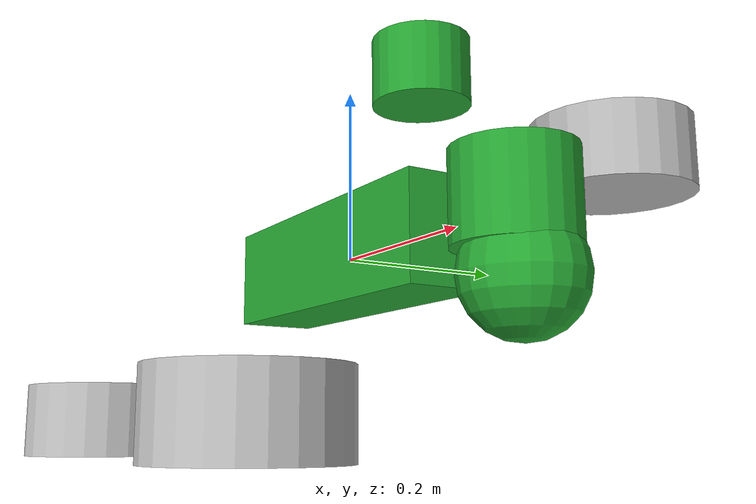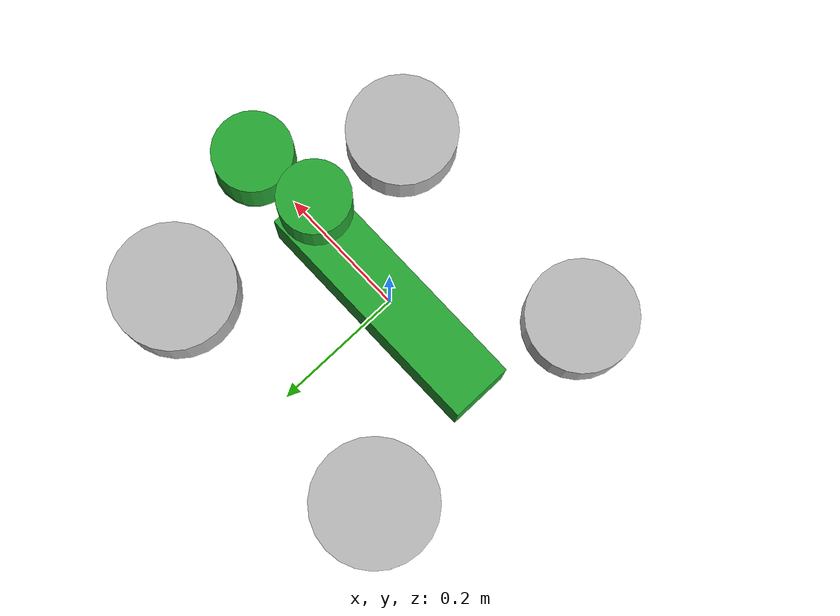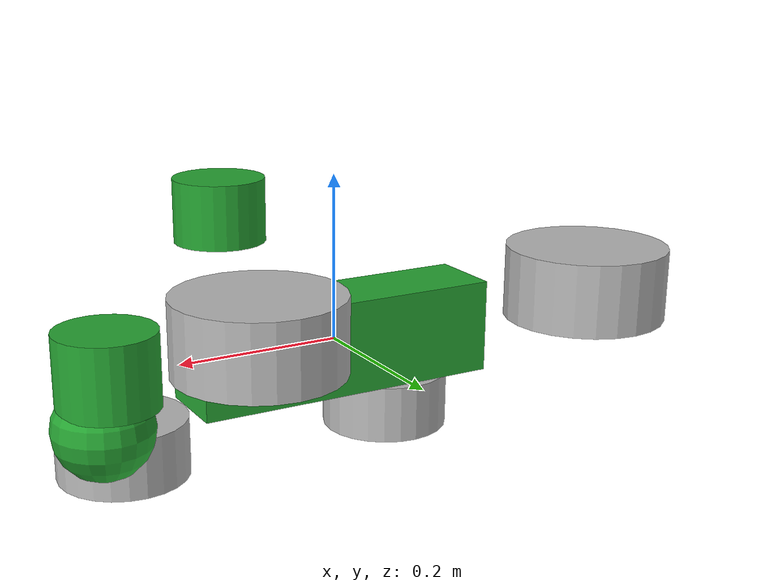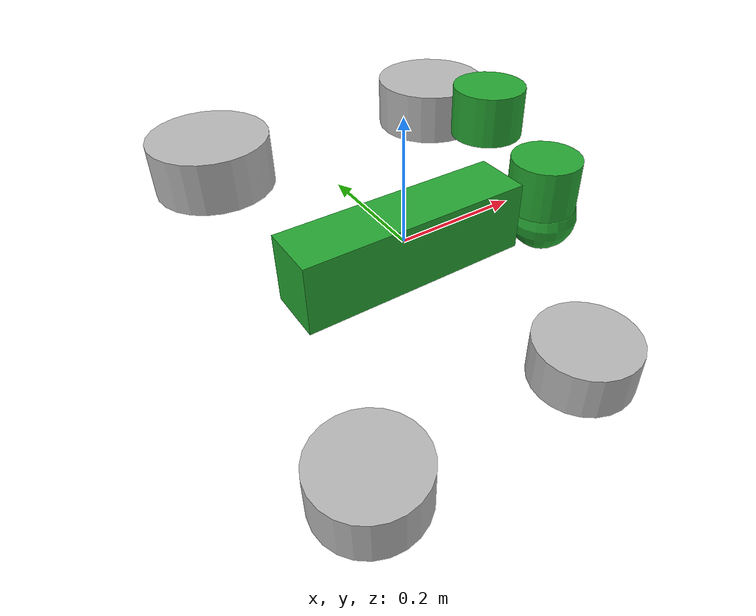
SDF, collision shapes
<?xml version="1.0"?>

<sdf version='1.6'>
  <model name='Go2W'>
      <plugin name="slotcar" filename="libslotcar.so">

      <nominal_drive_speed>2.0</nominal_drive_speed>
      <nominal_drive_acceleration>1.0</nominal_drive_acceleration>
      <max_drive_acceleration>2.0</max_drive_acceleration>

      <nominal_turn_speed>1.5</nominal_turn_speed>
      <nominal_turn_acceleration>3.0</nominal_turn_acceleration>
      <max_turn_acceleration>4.0</max_turn_acceleration>

      <tire_radius>0.089</tire_radius>
      <base_width>0.43</base_width>

      <stop_distance>0.75</stop_distance>
      <stop_radius>0.75</stop_radius>

      <reversible>true</reversible>

      <nominal_voltage>33.6</nominal_voltage>
      <nominal_capacity>15.0</nominal_capacity>
      <charging_current>9.0</charging_current>

      <mass>19.523</mass>
      <inertia>0.25</inertia>
      <friction_coefficient>0.22</friction_coefficient>

      <nominal_power>250.0</nominal_power>

    </plugin>

    <link name='base_link'>
      <inertial>
        <pose>0.021547 0 0.0 0 -0 0</pose>
        <mass>6.943</mass>
        <inertia>
          <ixx>0.026067</ixx>
          <ixy>0.00012166</ixy>
          <ixz>0.00104618</ixz>
          <iyy>0.100115</iyy>
          <iyz>-3.12e-05</iyz>
          <izz>0.108576</izz>
        </inertia>
      </inertial>
      <collision name='base_link_fixed_joint_lump__trunk_collision'>
        <pose>0 0 0 0 -0 0</pose>
        <geometry>
          <box>
            <size>0.3762 0.0935 0.114</size>
          </box>
        </geometry>
        <surface>
          <contact>
            <ode>
              <kp>1e+06</kp>
              <kd>1</kd>
            </ode>
          </contact>
          <friction>
            <ode>
              <mu>0.2</mu>
              <mu2>0.2</mu2>
            </ode>
          </friction>
        </surface>
      </collision>
      <collision name='base_link_fixed_joint_lump__Head_upper_collision_1'>
        <pose>0.285 0 0.01 0 -0 0</pose>
        <geometry>
          <cylinder>
            <length>0.09</length>
            <radius>0.06</radius>
          </cylinder>
        </geometry>
      </collision>
      <collision name='base_link_fixed_joint_lump__Head_lower_collision_2'>
        <pose>0.293 0 -0.06 0 -0 0</pose>
        <geometry>
          <sphere>
            <radius>0.06</radius>
          </sphere>
        </geometry>
      </collision>
      <collision name='base_link_fixed_joint_lump__vlp16_base_link_collision_3'>
        <pose>0.14543 0 0.17513 0 -0 0</pose>
        <geometry>
          <cylinder>
            <length>0.0717</length>
            <radius>0.0516</radius>
          </cylinder>
        </geometry>
      </collision>
      <collision name='base_link_fixed_joint_lump__vlp16_collision_4'>
        <pose>0.14543 0 0.17698 0 -0 0</pose>
        <geometry>
          <sphere>
            <radius>0</radius>
          </sphere>
        </geometry>
        <surface>
          <contact>
            <ode/>
          </contact>
          <friction>
            <ode/>
          </friction>
        </surface>
      </collision>
      <visual name='base_link_visual'>
        <pose>0 0 0 0 -0 0</pose>
        <geometry>
          <box>
            <size>0.001 0.001 0.001</size>
          </box>
        </geometry>
        <material>
          <script>
            <name>Gazebo/Green</name>
            <uri>file://media/materials/scripts/gazebo.material</uri>
          </script>
        </material>
      </visual>
      <visual name='base_link_fixed_joint_lump__trunk_visual_1'>
        <pose>0 0 0 0 -0 0</pose>
        <geometry>
          <mesh>
            <scale>1 1 1</scale>
            <uri>model://Go2W/meshes/base.dae</uri>
          </mesh>
        </geometry>
      </visual>
      <visual name='base_link_fixed_joint_lump__vlp16_link_visual_2'>
        <pose>0.14543 0 0.13928 0 -0 0</pose>
        <geometry>
          <mesh>
            <scale>1 1 1</scale>
            <uri>model://Go2W/meshes/sensors/VLP16_scan.dae</uri>
          </mesh>
        </geometry>
      </visual>
      <visual name='base_link_fixed_joint_lump__vlp16_base_link_visual_3'>
        <pose>0.14543 0 0.13928 0 -0 0</pose>
        <geometry>
          <mesh>
            <scale>1 1 1</scale>
            <uri>model://Go2W/meshes/sensors/VLP16_base_1.dae</uri>
          </mesh>
        </geometry>
      </visual>
      <visual name='base_link_fixed_joint_lump__vlp16_base_link_visual_4'>
        <pose>0.14543 0 0.13928 0 -0 0</pose>
        <geometry>
          <mesh>
            <scale>1 1 1</scale>
            <uri>model://Go2W/meshes/sensors/VLP16_base_2.dae</uri>
          </mesh>
        </geometry>
      </visual>
      <visual name='base_link_fixed_joint_lump__vlp16_visual_5'>
        <pose>0.14543 0 0.13928 0 -0 0</pose>
        <geometry>
          <mesh>
            <scale>1 1 1</scale>
            <uri>model://Go2W/meshes/sensors/VLP16_scan.dae</uri>
          </mesh>
        </geometry>
      </visual>
      <gravity>1</gravity>
    </link>
    <link name='left_wheel'>
      <!-- base_link 기준 위치: 좌측으로 base_width/2, 약간 아래/앞 (추측입니다.) -->
      <!-- base_width를 slotcar 플러그인에서 0.43으로 썼으니 0.215 = 0.43 / 2 -->
      <pose relative_to='base_link'>0 0.215 0.10 0 0 0</pose>
      <inertial>
        <pose>0 0 0 0 0 0</pose>
        <mass>3.0</mass>          <!-- 추측입니다. 한 축에 달린 두 휠 총 질량 가정 -->
        <inertia>                 <!-- 추측입니다. 대충 대칭값 -->
          <ixx>0.01</ixx>
          <ixy>0</ixy>
          <ixz>0</ixz>
          <iyy>0.01</iyy>
          <iyz>0</iyz>
          <izz>0.02</izz>
        </inertia>
      </inertial>
      <!-- 앞쪽 왼쪽 바퀴: visual -->
      <visual name='left_wheel_front_visual'>
        <!-- left_wheel 링크 기준으로 앞쪽으로 0.20m (추측입니다.) -->
        <pose>0.20 0 0 0 0 0</pose>
        <geometry>
          <mesh>
            <scale>1 1 1</scale>
            <uri>model://Go2W/meshes/left_wheel.dae</uri>
          </mesh>
        </geometry>
      </visual>

      <!-- 뒤쪽 왼쪽 바퀴: visual -->
      <visual name='left_wheel_rear_visual'>
        <!-- 뒤쪽으로 0.20m (추측입니다.) -->
        <pose>-0.20 0 0 0 0 0</pose>
        <geometry>
          <mesh>
            <scale>1 1 1</scale>
            <uri>model://Go2W/meshes/left_wheel.dae</uri>
          </mesh>
        </geometry>
      </visual>
      <!-- 앞쪽 왼쪽 바퀴: collision -->
      <collision name='left_wheel_front_collision'>
        <pose>0.20 0 0 0 0 0</pose>   <!-- visual과 동일 위치 -->
        <geometry>
          <!-- 7 inch 타이어 → 반지름 0.089m (확실) -->
          <cylinder>
            <length>0.08</length>     <!-- 타이어 두께 대략 값, 추측입니다. -->
            <radius>0.089</radius>    <!-- 확실 -->
          </cylinder>
        </geometry>
        <surface>
          <contact>
            <ode>
              <kp>100000.0</kp>       <!-- 기존 1e6보다 낮춘 값, 추측입니다. -->
              <kd>1.0</kd>
            </ode>
          </contact>
          <friction>
            <ode>
              <mu>1.0</mu>
              <mu2>1.0</mu2>
            </ode>
          </friction>
        </surface>
      </collision>
      <!-- 뒤쪽 왼쪽 바퀴: collision -->
      <collision name='left_wheel_rear_collision'>
        <pose>-0.20 0 0 0 0 0</pose>
        <geometry>
          <cylinder>
            <length>0.08</length>     <!-- 추측입니다. -->
            <radius>0.089</radius>    <!-- 확실 -->
          </cylinder>
        </geometry>
        <surface>
          <contact>
            <ode>
              <kp>100000.0</kp>
              <kd>1.0</kd>
            </ode>
          </contact>
          <friction>
            <ode>
              <mu>1.0</mu>
              <mu2>1.0</mu2>
            </ode>
          </friction>
        </surface>
      </collision>

      <gravity>1</gravity>
      <velocity_decay/>
    </link>
    <joint name='joint_tire_left' type='revolute'>
      <parent>base_link</parent>       <!-- base_footprint 쓰는 구조면 거기로 바꿔도 됨 -->
      <child>left_wheel</child>
      <axis>
        <!-- y축 회전: 0 1 0 -->
        <xyz>0 1 0</xyz>
        <limit>
          <lower>-1e+16</lower>
          <upper>1e+16</upper>
        </limit>
        <dynamics>
          <spring_reference>0</spring_reference>
          <spring_stiffness>0</spring_stiffness>
        </dynamics>
        <use_parent_model_frame>1</use_parent_model_frame>
      </axis>
    </joint>
    <link name='right_wheel'>
      <!-- base_link 기준 위치: 좌측으로 base_width/2, 약간 아래/앞 (추측입니다.) -->
      <!-- base_width를 slotcar 플러그인에서 0.43으로 썼으니 0.215 = 0.43 / 2 -->
      <pose relative_to='base_link'>0 -0.215 -0.18 0 0 0</pose>
      <inertial>
        <pose>0 0 0 0 0 0</pose>
        <mass>3.0</mass>          <!-- 추측입니다. 한 축에 달린 두 휠 총 질량 가정 -->
        <inertia>                 <!-- 추측입니다. 대충 대칭값 -->
          <ixx>0.01</ixx>
          <ixy>0</ixy>
          <ixz>0</ixz>
          <iyy>0.01</iyy>
          <iyz>0</iyz>
          <izz>0.02</izz>
        </inertia>
      </inertial>
      <!-- 앞쪽 왼쪽 바퀴: visual -->
      <visual name='right_wheel_front_visual'>
        <!-- right_wheel 링크 기준으로 앞쪽으로 0.20m (추측입니다.) -->
        <pose>0.20 0 0 0 0 0</pose>
        <geometry>
          <mesh>
            <scale>1 1 1</scale>
            <uri>model://Go2W/meshes/right_wheel.dae</uri>
          </mesh>
        </geometry>
      </visual>

      <!-- 뒤쪽 왼쪽 바퀴: visual -->
      <visual name='right_wheel_rear_visual'>
        <!-- 뒤쪽으로 0.20m (추측입니다.) -->
        <pose>-0.20 0 0 0 0 0</pose>
        <geometry>
          <mesh>
            <scale>1 1 1</scale>
            <uri>model://Go2W/meshes/right_wheel.dae</uri>
          </mesh>
        </geometry>
      </visual>
      <!-- 앞쪽 왼쪽 바퀴: collision -->
      <collision name='right_wheel_front_collision'>
        <pose>0.20 0 0 0 0 0</pose>   <!-- visual과 동일 위치 -->
        <geometry>
          <!-- 7 inch 타이어 → 반지름 0.089m (확실) -->
          <cylinder>
            <length>0.08</length>     <!-- 타이어 두께 대략 값, 추측입니다. -->
            <radius>0.089</radius>    <!-- 확실 -->
          </cylinder>
        </geometry>
        <surface>
          <contact>
            <ode>
              <kp>100000.0</kp>       <!-- 기존 1e6보다 낮춘 값, 추측입니다. -->
              <kd>1.0</kd>
            </ode>
          </contact>
          <friction>
            <ode>
              <mu>1.0</mu>
              <mu2>1.0</mu2>
            </ode>
          </friction>
        </surface>
      </collision>
      <!-- 뒤쪽 왼쪽 바퀴: collision -->
      <collision name='right_wheel_rear_collision'>
        <pose>-0.20 0 0 0 0 0</pose>
        <geometry>
          <cylinder>
            <length>0.08</length>     <!-- 추측입니다. -->
            <radius>0.089</radius>    <!-- 확실 -->
          </cylinder>
        </geometry>
        <surface>
          <contact>
            <ode>
              <kp>100000.0</kp>
              <kd>1.0</kd>
            </ode>
          </contact>
          <friction>
            <ode>
              <mu>1.0</mu>
              <mu2>1.0</mu2>
            </ode>
          </friction>
        </surface>
      </collision>

      <gravity>1</gravity>
      <velocity_decay/>
    </link>
    <joint name='joint_tire_right' type='revolute'>
      <parent>base_link</parent>       <!-- base_footprint 쓰는 구조면 거기로 바꿔도 됨 -->
      <child>right_wheel</child>
      <axis>
        <!-- y축 회전: 0 1 0 -->
        <xyz>0 1 0</xyz>
        <limit>
          <lower>-1e+16</lower>
          <upper>1e+16</upper>
        </limit>
        <dynamics>
          <spring_reference>0</spring_reference>
          <spring_stiffness>0</spring_stiffness>
        </dynamics>
        <use_parent_model_frame>1</use_parent_model_frame>
      </axis>
    </joint>

    <static>0</static>

  </model>
</sdf>
